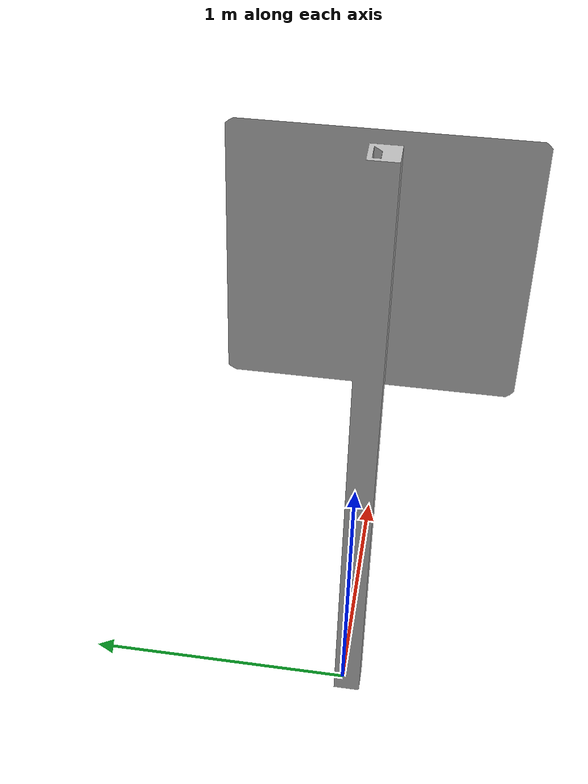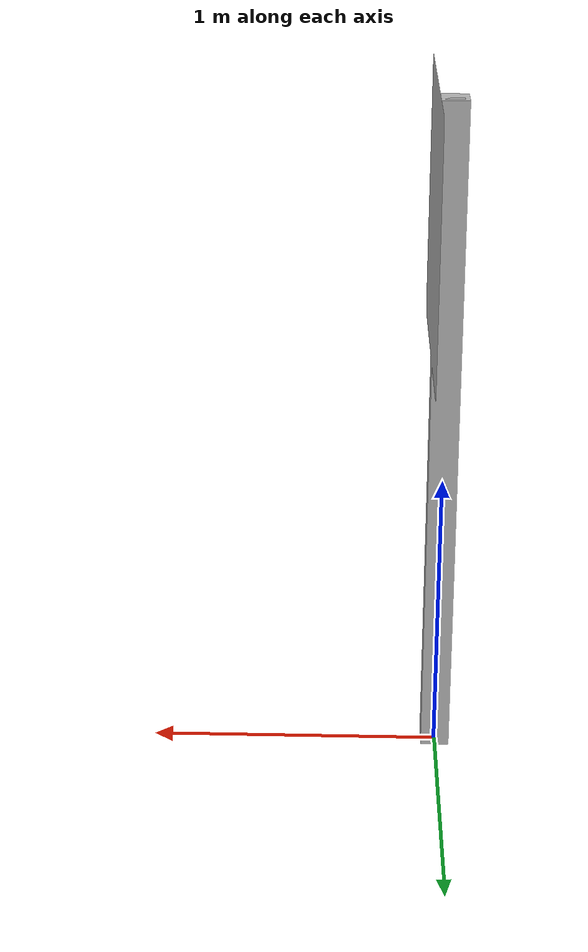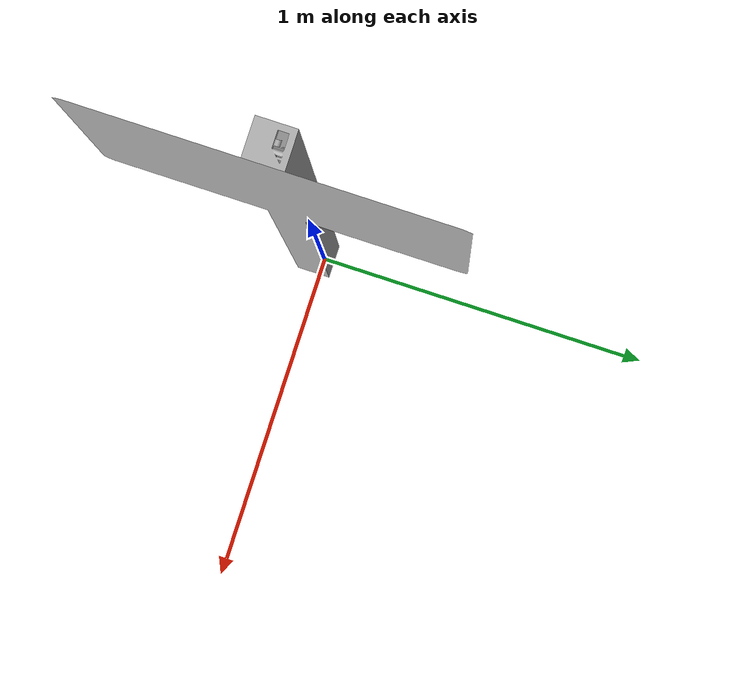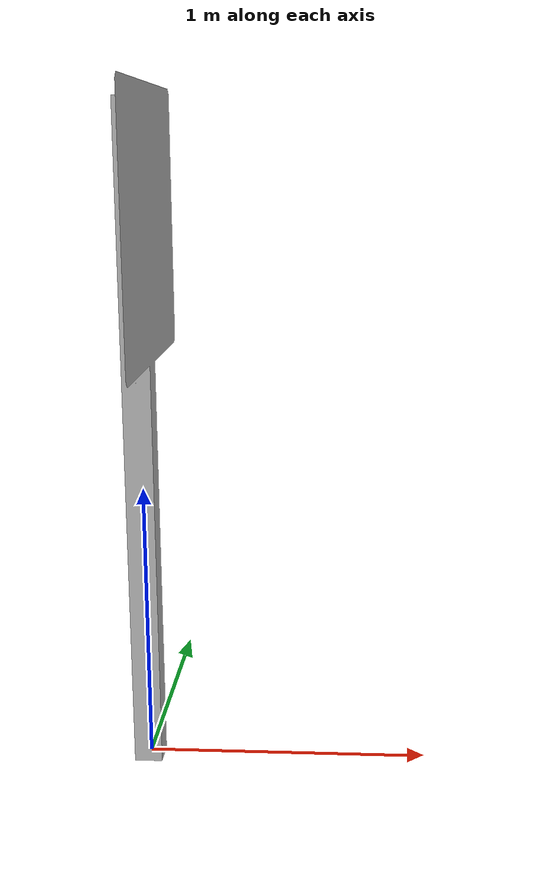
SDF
<?xml version="1.0" ?>
<sdf version="1.6">
  <model name="two_way_road_sign">
    <static>true</static>
    <link name="link">
      <visual name="visual">
      	<pose>0 0 0 1.5708 0 0</pose>
        <geometry>
          <mesh>
            <uri>model://two_way_road_sign/meshes/two_way_road_sign.obj</uri>
          </mesh>
        </geometry>
        <material>
          <script>
            <uri>model://two_way_road_sign/materials/scripts</uri>
            <name>street_signs</name>
          </script>
        </material>
      </visual>
    </link>
  </model>
</sdf>
